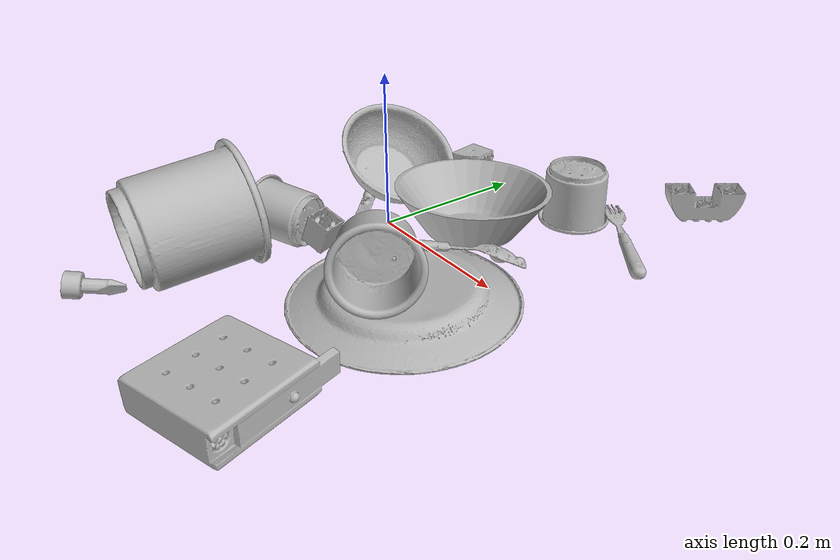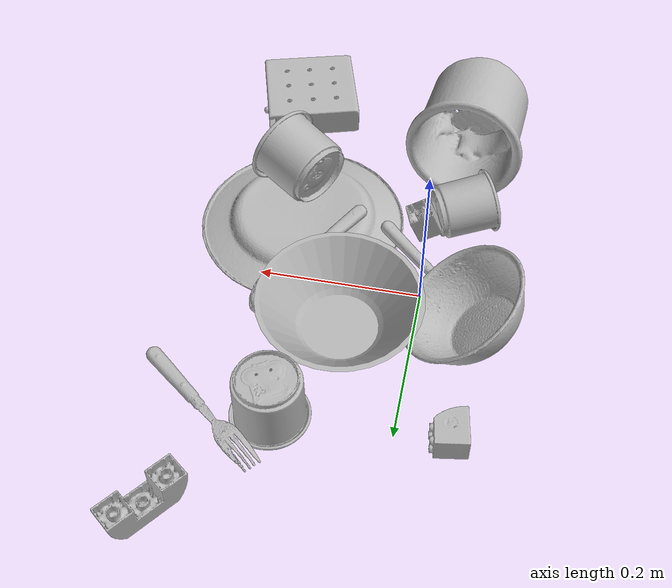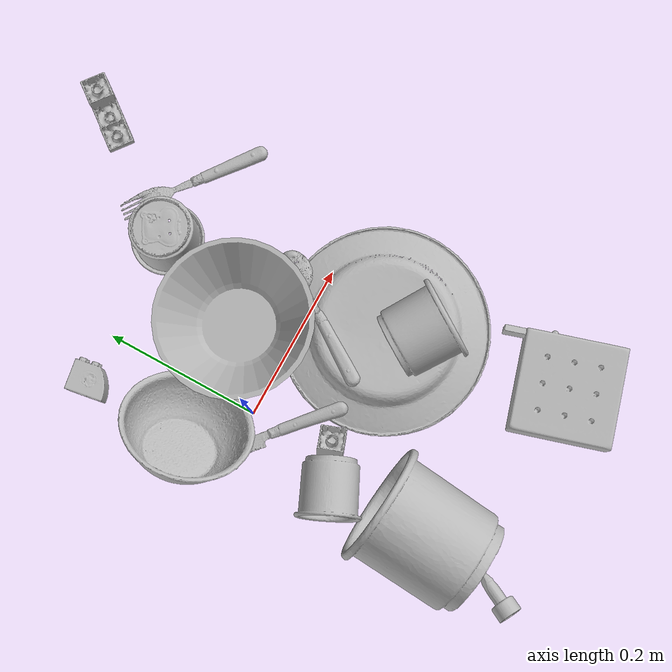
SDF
<sdf version="1.4">
  <world name="default">
    <light name="light1" type="point">
      <pose>0 0 1 0 0 0</pose>
      <diffuse>3 3 3 1</diffuse>
      <specular>3 3 3 1</specular>
    </light>
    <light name="light2" type="point">
      <pose>0 0.5 2 0 0 0</pose>
      <diffuse>1 1 1 1</diffuse>
      <specular>1 1 1 1</specular>
    </light>
    <light name="light3" type="point">
      <pose>0 0.5 2 0 0 0</pose>
      <diffuse>3 3 3 1</diffuse>
      <specular>3 3 3 1</specular>
    </light>
    <scene>
      <ambient>0.7 0.7 0.7</ambient>
    </scene>
    <model name="plate1">
      <link name="link_plate1">
        <collision name="default">
          <geometry>
            <mesh>
              <uri>model://plate/collision_meshes/collision.obj</uri>
              <scale>1.0 1.0 1.0</scale>
            </mesh>
          </geometry>
          <surface>
            <friction>
              <ode>
                <mu>0.5</mu>
                <mu2>0.5</mu2>
              </ode>
            </friction>
          <contact>
        <ode>
            <max_vel>0</max_vel>
            <min_depth>0.0001</min_depth>
            <kp>1e8</kp>
        </ode>
    </contact></surface>
        </collision>
        <visual name="default">
          <geometry>
            <mesh>
              <uri>model://plate/visual_meshes/visual.dae</uri>
              <scale>1.0 1.0 1.0</scale>
            </mesh>
          </geometry>
        </visual>
        <inertial>
          <mass>0.17760059237480164</mass>
          <pose>-0.0006044625188224018 0.0002782586379908025 -0.0010561981471255422 0.0022187804018266454 -0.0032254852757079067 0.45261158451631034</pose>
          <inertia>
            <ixx>0.0008308187</ixx>
            <iyy>0.0008228725</iyy>
            <izz>0.0016249575</izz>
            <ixy>0</ixy>
            <ixz>0</ixz>
            <iyz>0</iyz>
          </inertia>
        </inertial>
      </link>
      <pose>0.16708076000213623 -0.09249977022409439 0.013448907062411308 3.1414387834168718 -0.0031652115702142463 1.8817185632811964</pose>
    </model>
    <model name="cup1">
      <link name="link_cup1">
        <collision name="default">
          <geometry>
            <mesh>
              <uri>model://e_cups/collision_meshes/collision.obj</uri>
              <scale>2.0 2.0 2.0</scale>
            </mesh>
          </geometry>
          <surface>
            <friction>
              <ode>
                <mu>0.5</mu>
                <mu2>0.5</mu2>
              </ode>
            </friction>
          <contact>
        <ode>
            <max_vel>0</max_vel>
            <min_depth>0.0001</min_depth>
            <kp>1e8</kp>
        </ode>
    </contact></surface>
        </collision>
        <visual name="default">
          <geometry>
            <mesh>
              <uri>model://e_cups/visual_meshes/visual.dae</uri>
              <scale>2.0 2.0 2.0</scale>
            </mesh>
          </geometry>
        </visual>
        <inertial>
          <mass>0.744063675403595</mass>
          <pose>0.002271148143336177 0.005759569350630045 -0.007765938527882099 0.6952380949131286 0.08767384491187986 -0.5235246841726229</pose>
          <inertia>
            <ixx>0.0026243117</ixx>
            <iyy>0.0027427815</iyy>
            <izz>0.0025091455</izz>
            <ixy>0</ixy>
            <ixz>0</ixz>
            <iyz>0</iyz>
          </inertia>
        </inertial>
      </link>
      <pose>-0.030234113335609436 -0.2521378993988037 0.06935401260852814 -0.7827653631486138 1.43629927949653 0.6962448943568862</pose>
    </model>
    <model name="silverware1">
      <link name="link_silverware1">
        <collision name="default">
          <geometry>
            <mesh>
              <uri>model://knife/collision_meshes/collision.obj</uri>
              <scale>1.0 1.0 1.0</scale>
            </mesh>
          </geometry>
          <surface>
            <friction>
              <ode>
                <mu>0.5</mu>
                <mu2>0.5</mu2>
              </ode>
            </friction>
          <contact>
        <ode>
            <max_vel>0</max_vel>
            <min_depth>0.0001</min_depth>
            <kp>1e8</kp>
        </ode>
    </contact></surface>
        </collision>
        <visual name="default">
          <geometry>
            <mesh>
              <uri>model://knife/visual_meshes/visual.dae</uri>
              <scale>1.0 1.0 1.0</scale>
            </mesh>
          </geometry>
        </visual>
        <inertial>
          <mass>0.01882243901491165</mass>
          <pose>-0.02378525212407112 0.001527512213215232 5.062019408796914e-05 0.07305335090357784 0.017248422780830937 -0.007409828138098005</pose>
          <inertia>
            <ixx>5.342572e-07</ixx>
            <iyy>7.231275e-05</iyy>
            <izz>7.248483e-05</izz>
            <ixy>0</ixy>
            <ixz>0</ixz>
            <iyz>0</iyz>
          </inertia>
        </inertial>
      </link>
      <pose>-0.02000339888036251 -0.02779310755431652 0.009125186130404472 3.0403638548061904 0.07436594733322187 2.4293424774650902</pose>
    </model>
    <model name="silverware2">
      <link name="link_silverware2">
        <collision name="default">
          <geometry>
            <mesh>
              <uri>model://fork/collision_meshes/collision.obj</uri>
              <scale>1.0 1.0 1.0</scale>
            </mesh>
          </geometry>
          <surface>
            <friction>
              <ode>
                <mu>0.5</mu>
                <mu2>0.5</mu2>
              </ode>
            </friction>
          <contact>
        <ode>
            <max_vel>0</max_vel>
            <min_depth>0.0001</min_depth>
            <kp>1e8</kp>
        </ode>
    </contact></surface>
        </collision>
        <visual name="default">
          <geometry>
            <mesh>
              <uri>model://fork/visual_meshes/visual.dae</uri>
              <scale>1.0 1.0 1.0</scale>
            </mesh>
          </geometry>
        </visual>
        <inertial>
          <mass>0.02216319739818573</mass>
          <pose>-0.029570037499070168 0.0004658822435885668 0.0003218860365450382 -0.01355085274048469 -0.010977831838055618 0.014453900749429992</pose>
          <inertia>
            <ixx>7.769453e-07</ixx>
            <iyy>5.7861733e-05</iyy>
            <izz>5.8209254e-05</izz>
            <ixy>0</ixy>
            <ixz>0</ixz>
            <iyz>0</iyz>
          </inertia>
        </inertial>
      </link>
      <pose>0.2170344442129135 0.2058274745941162 0.007616802118718624 -3.029397115776401 0.0013208828430152327 2.479269121974545</pose>
    </model>
    <model name="silverware3">
      <link name="link_silverware3">
        <collision name="default">
          <geometry>
            <mesh>
              <uri>model://spoon/collision_meshes/collision.obj</uri>
              <scale>1.0 1.0 1.0</scale>
            </mesh>
          </geometry>
          <surface>
            <friction>
              <ode>
                <mu>0.5</mu>
                <mu2>0.5</mu2>
              </ode>
            </friction>
          <contact>
        <ode>
            <max_vel>0</max_vel>
            <min_depth>0.0001</min_depth>
            <kp>1e8</kp>
        </ode>
    </contact></surface>
        </collision>
        <visual name="default">
          <geometry>
            <mesh>
              <uri>model://spoon/visual_meshes/visual.dae</uri>
              <scale>1.0 1.0 1.0</scale>
            </mesh>
          </geometry>
        </visual>
        <inertial>
          <mass>0.0369713120162487</mass>
          <pose>-0.005526314955204725 -0.001603417214937508 -0.0007271651993505657 0.03521850370393077 -0.03906584809093457 0.006150612862082015</pose>
          <inertia>
            <ixx>2.0564048e-06</ixx>
            <iyy>0.00014067463</iyy>
            <izz>0.00014168874</izz>
            <ixy>0</ixy>
            <ixz>0</ixz>
            <iyz>0</iyz>
          </inertia>
        </inertial>
      </link>
      <pose>0.14268413186073303 -0.01476534828543663 0.02869117446243763 2.9993249133799194 0.11237040541033114 0.98570135984367</pose>
    </model>
    <model name="cup3">
      <link name="link_cup3">
        <collision name="default">
          <geometry>
            <mesh>
              <uri>model://h_cups/collision_meshes/collision.obj</uri>
              <scale>1.0 1.0 1.0</scale>
            </mesh>
          </geometry>
          <surface>
            <friction>
              <ode>
                <mu>0.5</mu>
                <mu2>0.5</mu2>
              </ode>
            </friction>
          <contact>
        <ode>
            <max_vel>0</max_vel>
            <min_depth>0.0001</min_depth>
            <kp>1e8</kp>
        </ode>
    </contact></surface>
        </collision>
        <visual name="default">
          <geometry>
            <mesh>
              <uri>model://h_cups/visual_meshes/visual.dae</uri>
              <scale>1.0 1.0 1.0</scale>
            </mesh>
          </geometry>
        </visual>
        <inertial>
          <mass>0.07650958746671677</mass>
          <pose>-2.7029362172470428e-05 0.0002301867789356038 -0.0018405390437692404 -0.02436239906192228 0.06545228304852578 0.1288505673262376</pose>
          <inertia>
            <ixx>9.880857e-05</ixx>
            <iyy>9.7629454e-05</iyy>
            <izz>0.0001036231</izz>
            <ixy>0</ixy>
            <ixz>0</ixz>
            <iyz>0</iyz>
          </inertia>
        </inertial>
      </link>
      <pose>0.13813094794750214 0.19949567317962646 0.03753005713224411 -3.1415896458014037 1.0549881162677894e-06 2.217903361798623</pose>
    </model>
    <model name="cup4">
      <link name="link_cup4">
        <collision name="default">
          <geometry>
            <mesh>
              <uri>model://f_cups/collision_meshes/collision.obj</uri>
              <scale>1.0 1.0 1.0</scale>
            </mesh>
          </geometry>
          <surface>
            <friction>
              <ode>
                <mu>0.5</mu>
                <mu2>0.5</mu2>
              </ode>
            </friction>
          <contact>
        <ode>
            <max_vel>0</max_vel>
            <min_depth>0.0001</min_depth>
            <kp>1e8</kp>
        </ode>
    </contact></surface>
        </collision>
        <visual name="default">
          <geometry>
            <mesh>
              <uri>model://f_cups/visual_meshes/visual.dae</uri>
              <scale>1.0 1.0 1.0</scale>
            </mesh>
          </geometry>
        </visual>
        <inertial>
          <mass>0.06643713265657425</mass>
          <pose>-0.003171468386426568 -0.0006240070797502995 -0.003655537962913513 0.7862285241405351 -0.26079358215919657 -0.18237309734404591</pose>
          <inertia>
            <ixx>6.2452695e-05</ixx>
            <iyy>6.551358e-05</iyy>
            <izz>6.820148e-05</izz>
            <ixy>0</ixy>
            <ixz>0</ixz>
            <iyz>0</iyz>
          </inertia>
        </inertial>
      </link>
      <pose>-0.03573864698410034 -0.12653377652168274 0.037185799330472946 -0.5510541634031245 -1.4612271147380973 0.9918129908427455</pose>
    </model>
    <model name="cup5">
      <link name="link_cup5">
        <collision name="default">
          <geometry>
            <mesh>
              <uri>model://j_cups/collision_meshes/collision.obj</uri>
              <scale>1.0 1.0 1.0</scale>
            </mesh>
          </geometry>
          <surface>
            <friction>
              <ode>
                <mu>0.5</mu>
                <mu2>0.5</mu2>
              </ode>
            </friction>
          <contact>
        <ode>
            <max_vel>0</max_vel>
            <min_depth>0.0001</min_depth>
            <kp>1e8</kp>
        </ode>
    </contact></surface>
        </collision>
        <visual name="default">
          <geometry>
            <mesh>
              <uri>model://j_cups/visual_meshes/visual.dae</uri>
              <scale>1.0 1.0 1.0</scale>
            </mesh>
          </geometry>
        </visual>
        <inertial>
          <mass>0.12178023159503937</mass>
          <pose>0.0006164865335449576 0.000539897009730339 -0.001347901183180511 0.03030406613159603 0.03757978252187804 0.4386981755119238</pose>
          <inertia>
            <ixx>0.0001788119</ixx>
            <iyy>0.00018067128</iyy>
            <izz>0.00020613305</izz>
            <ixy>0</ixy>
            <ixz>0</ixz>
            <iyz>0</iyz>
          </inertia>
        </inertial>
      </link>
      <pose>0.17621934413909912 -0.1327739953994751 0.07321393489837646 -1.3540536105906327 -0.8637661584955362 -2.3203265432432727</pose>
    </model>
    <model name="bowl1">
      <link name="link_bowl1">
        <collision name="default">
          <geometry>
            <mesh>
              <uri>model://bowl/collision_meshes/collision.obj</uri>
              <scale>1.0 1.0 1.0</scale>
            </mesh>
          </geometry>
          <surface>
            <friction>
              <ode>
                <mu>0.5</mu>
                <mu2>0.5</mu2>
              </ode>
            </friction>
          <contact>
        <ode>
            <max_vel>0</max_vel>
            <min_depth>0.0001</min_depth>
            <kp>1e8</kp>
        </ode>
    </contact></surface>
        </collision>
        <visual name="default">
          <geometry>
            <mesh>
              <uri>model://bowl/visual_meshes/visual.dae</uri>
              <scale>1.0 1.0 1.0</scale>
            </mesh>
          </geometry>
        </visual>
        <inertial>
          <mass>0.07745425403118134</mass>
          <pose>0.0002044533030129969 -0.001030205748975277 -0.0008042643312364817 -0.015764104528614948 0.014546761750555465 0.7140386532433999</pose>
          <inertia>
            <ixx>0.00017791858</ixx>
            <iyy>0.0001739432</iyy>
            <izz>0.00029932024</izz>
            <ixy>0</ixy>
            <ixz>0</ixz>
            <iyz>0</iyz>
          </inertia>
        </inertial>
      </link>
      <pose>-0.06580720096826553 0.05403652787208557 0.048988860100507736 0.30215085385788176 0.5653294324961049 0.5707064468615654</pose>
    </model>
    <model name="bowl2">
      <link name="link_bowl2">
        <collision name="default">
          <geometry>
            <mesh>
              <uri>model://bowl_a/collision_meshes/collision.obj</uri>
              <scale>1.0 1.0 1.0</scale>
            </mesh>
          </geometry>
          <surface>
            <friction>
              <ode>
                <mu>0.5</mu>
                <mu2>0.5</mu2>
              </ode>
            </friction>
          <contact>
        <ode>
            <max_vel>0</max_vel>
            <min_depth>0.0001</min_depth>
            <kp>1e8</kp>
        </ode>
    </contact></surface>
        </collision>
        <visual name="default">
          <geometry>
            <mesh>
              <uri>model://bowl_a/visual_meshes/visual.dae</uri>
              <scale>1.0 1.0 1.0</scale>
            </mesh>
          </geometry>
        </visual>
        <inertial>
          <mass>0.3088552951812744</mass>
          <pose>0.00027867488097399473 4.730938235297799e-05 -0.0013765291078016162 -0.0009805400563029818 -0.0010938222386440513 -0.19123616665791646</pose>
          <inertia>
            <ixx>0.0008793254</ixx>
            <iyy>0.00088472397</iyy>
            <izz>0.0015639137</izz>
            <ixy>0</ixy>
            <ixz>0</ixz>
            <iyz>0</iyz>
          </inertia>
        </inertial>
      </link>
      <pose>0.08550423383712769 0.06946364045143127 0.03316766023635864 -0.04299343971420791 0.025986800600700178 0.859343731987979</pose>
    </model>
    <model name="toy1">
      <link name="link_toy1">
        <collision name="default">
          <geometry>
            <mesh>
              <uri>model://nine_hole_peg_test/collision_meshes/collision.obj</uri>
              <scale>1.0 1.0 1.0</scale>
            </mesh>
          </geometry>
          <surface>
            <friction>
              <ode>
                <mu>0.5</mu>
                <mu2>0.5</mu2>
              </ode>
            </friction>
          <contact>
        <ode>
            <max_vel>0</max_vel>
            <min_depth>0.0001</min_depth>
            <kp>1e8</kp>
        </ode>
    </contact></surface>
        </collision>
        <visual name="default">
          <geometry>
            <mesh>
              <uri>model://nine_hole_peg_test/visual_meshes/visual.dae</uri>
              <scale>1.0 1.0 1.0</scale>
            </mesh>
          </geometry>
        </visual>
        <inertial>
          <mass>0.6997236609458923</mass>
          <pose>-0.004617386497557163 -0.009647613391280174 2.6460686058271676e-05 -0.0014666798725883532 0.0007194177661592421 -0.634241755630697</pose>
          <inertia>
            <ixx>0.001094133</ixx>
            <iyy>0.0010215805</iyy>
            <izz>0.0019172435</izz>
            <ixy>0</ixy>
            <ixz>0</ixz>
            <iyz>0</iyz>
          </inertia>
        </inertial>
      </link>
      <pose>0.20826074481010437 -0.3093666434288025 0.020771007984876633 1.4608643120377539e-09 2.397174396171435e-08 0.297675386479847</pose>
    </model>
    <model name="toy2">
      <link name="link_toy2">
        <collision name="default">
          <geometry>
            <mesh>
              <uri>model://b_lego_duplo/collision_meshes/collision.obj</uri>
              <scale>1.0 1.0 1.0</scale>
            </mesh>
          </geometry>
          <surface>
            <friction>
              <ode>
                <mu>0.5</mu>
                <mu2>0.5</mu2>
              </ode>
            </friction>
          <contact>
        <ode>
            <max_vel>0</max_vel>
            <min_depth>0.0001</min_depth>
            <kp>1e8</kp>
        </ode>
    </contact></surface>
        </collision>
        <visual name="default">
          <geometry>
            <mesh>
              <uri>model://b_lego_duplo/visual_meshes/visual.dae</uri>
              <scale>1.0 1.0 1.0</scale>
            </mesh>
          </geometry>
        </visual>
        <inertial>
          <mass>0.036269694566726685</mass>
          <pose>-0.00011053054186049849 -9.152130587608553e-06 0.0019294297089800239 -0.03749458994465856 -0.026354447033388347 0.4518895757464325</pose>
          <inertia>
            <ixx>7.4228647e-06</ixx>
            <iyy>7.4727645e-06</iyy>
            <izz>6.6135317e-06</izz>
            <ixy>0</ixy>
            <ixz>0</ixz>
            <iyz>0</iyz>
          </inertia>
        </inertial>
      </link>
      <pose>0.010134756565093994 -0.1033034697175026 0.02476966194808483 3.1415374471970923 -0.3879712194590005 -2.7948746097269423</pose>
    </model>
    <model name="toy3">
      <link name="link_toy3">
        <collision name="default">
          <geometry>
            <mesh>
              <uri>model://e_lego_duplo/collision_meshes/collision.obj</uri>
              <scale>1.0 1.0 1.0</scale>
            </mesh>
          </geometry>
          <surface>
            <friction>
              <ode>
                <mu>0.5</mu>
                <mu2>0.5</mu2>
              </ode>
            </friction>
          <contact>
        <ode>
            <max_vel>0</max_vel>
            <min_depth>0.0001</min_depth>
            <kp>1e8</kp>
        </ode>
    </contact></surface>
        </collision>
        <visual name="default">
          <geometry>
            <mesh>
              <uri>model://e_lego_duplo/visual_meshes/visual.dae</uri>
              <scale>1.0 1.0 1.0</scale>
            </mesh>
          </geometry>
        </visual>
        <inertial>
          <mass>0.09994293004274368</mass>
          <pose>0.0003256055060774088 0.00023485402925871313 0.0019521453650668263 -0.0225675226805428 -6.825163911406593e-05 -0.00762515763197677</pose>
          <inertia>
            <ixx>2.08414e-05</ixx>
            <iyy>8.553845e-05</iyy>
            <izz>8.329725e-05</izz>
            <ixy>0</ixy>
            <ixz>0</ixz>
            <iyz>0</iyz>
          </inertia>
        </inertial>
      </link>
      <pose>0.23637299239635468 0.33672192692756653 0.021755477413535118 -3.1248228077448506 -0.0022750397491529796 0.9121825224778514</pose>
    </model>
    <model name="toy4">
      <link name="link_toy4">
        <collision name="default">
          <geometry>
            <mesh>
              <uri>model://d_lego_duplo/collision_meshes/collision.obj</uri>
              <scale>1.0 1.0 1.0</scale>
            </mesh>
          </geometry>
          <surface>
            <friction>
              <ode>
                <mu>0.5</mu>
                <mu2>0.5</mu2>
              </ode>
            </friction>
          <contact>
        <ode>
            <max_vel>0</max_vel>
            <min_depth>0.0001</min_depth>
            <kp>1e8</kp>
        </ode>
    </contact></surface>
        </collision>
        <visual name="default">
          <geometry>
            <mesh>
              <uri>model://d_lego_duplo/visual_meshes/visual.dae</uri>
              <scale>1.0 1.0 1.0</scale>
            </mesh>
          </geometry>
        </visual>
        <inertial>
          <mass>0.04219998046755791</mass>
          <pose>0.0028305635787546635 0.00016366135969292372 0.0008589813369326293 0.08010947906167593 -0.38355230128712514 0.001029700717632254</pose>
          <inertia>
            <ixx>8.169298e-06</ixx>
            <iyy>1.1594444e-05</iyy>
            <izz>1.1181217e-05</izz>
            <ixy>0</ixy>
            <ixz>0</ixz>
            <iyz>0</iyz>
          </inertia>
        </inertial>
      </link>
      <pose>-0.059224650263786316 0.19200871884822845 0.016249636188149452 1.579336929138504 -0.013119758229107164 1.730691366369141</pose>
    </model>
    <model name="toy5">
      <link name="link_toy5">
        <collision name="default">
          <geometry>
            <mesh>
              <uri>model://e_toy_airplane/collision_meshes/collision.obj</uri>
              <scale>1.0 1.0 1.0</scale>
            </mesh>
          </geometry>
          <surface>
            <friction>
              <ode>
                <mu>0.5</mu>
                <mu2>0.5</mu2>
              </ode>
            </friction>
          <contact>
        <ode>
            <max_vel>0</max_vel>
            <min_depth>0.0001</min_depth>
            <kp>1e8</kp>
        </ode>
    </contact></surface>
        </collision>
        <visual name="default">
          <geometry>
            <mesh>
              <uri>model://e_toy_airplane/visual_meshes/visual.dae</uri>
              <scale>1.0 1.0 1.0</scale>
            </mesh>
          </geometry>
        </visual>
        <inertial>
          <mass>0.01083444245159626</mass>
          <pose>0.00011740464105969295 -2.2482989152194932e-05 -0.011187201365828514 0.005518500665833105 0.009228299677984822 0.1504140594290799</pose>
          <inertia>
            <ixx>3.3067965e-06</ixx>
            <iyy>3.2729695e-06</iyy>
            <izz>9.938221e-07</izz>
            <ixy>0</ixy>
            <ixz>0</ixz>
            <iyz>0</iyz>
          </inertia>
        </inertial>
      </link>
      <pose>-0.04902821034193039 -0.3584039509296417 0.012221232987940311 1.742498669513793 -0.14000460573665144 2.6312594065885864</pose>
    </model>
  <physics type="ode">
      <max_contacts>50</max_contacts>
      <ode>
        <solver>
          <type>quick</type>
          <iters>75</iters>
        </solver>
        <constraints>
          <contact_max_correcting_vel>0</contact_max_correcting_vel>
          <contact_surface_layer>0</contact_surface_layer>
        </constraints>
      </ode>
    </physics></world>
</sdf>
